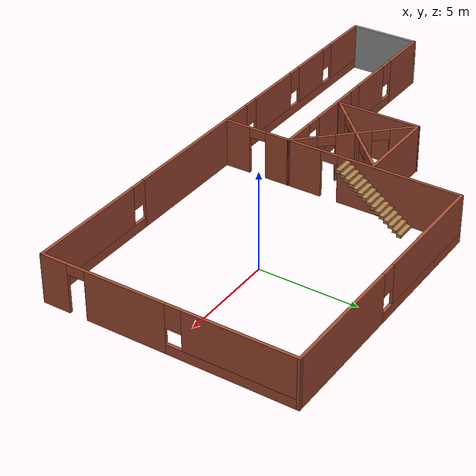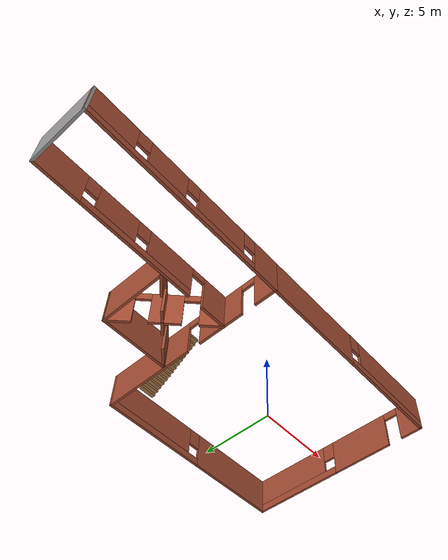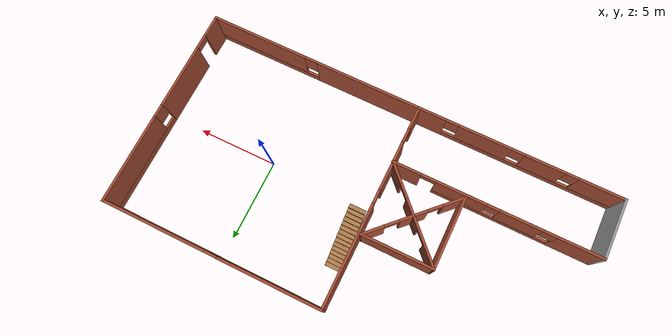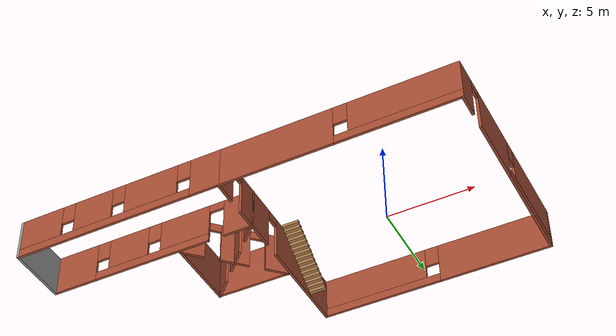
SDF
<?xml version='1.0'?>
<sdf version='1.7'>
  <model name='BrickBuilding'>
    <pose>-6.20039 0.049784 0 0 -0 0</pose>
    <link name='Stairs_0'>
      <visual name='Stairs_0_Visual_0'>
        <pose>0.13953 3.90131 0.083333 0 -0 0</pose>
        <geometry>
          <box>
            <size>1 0.233333 0.166667</size>
          </box>
        </geometry>
        <material>
          <script>
            <uri>file://media/materials/scripts/gazebo.material</uri>
            <name>Gazebo/Wood</name>
          </script>
          <ambient>1 1 1 1</ambient>
        </material>
        <meta>
          <layer>0</layer>
        </meta>
      </visual>
      <collision name='Stairs_0_Collision_0'>
        <geometry>
          <box>
            <size>1 0.233333 0.166667</size>
          </box>
        </geometry>
        <pose>0.13953 3.90131 0.083333 0 -0 0</pose>
      </collision>
      <visual name='Stairs_0_Visual_1'>
        <pose>0.13953 3.66797 0.25 0 -0 0</pose>
        <geometry>
          <box>
            <size>1 0.233333 0.166667</size>
          </box>
        </geometry>
        <material>
          <script>
            <uri>file://media/materials/scripts/gazebo.material</uri>
            <name>Gazebo/Wood</name>
          </script>
          <ambient>1 1 1 1</ambient>
        </material>
        <meta>
          <layer>0</layer>
        </meta>
      </visual>
      <collision name='Stairs_0_Collision_1'>
        <geometry>
          <box>
            <size>1 0.233333 0.166667</size>
          </box>
        </geometry>
        <pose>0.13953 3.66797 0.25 0 -0 0</pose>
      </collision>
      <visual name='Stairs_0_Visual_2'>
        <pose>0.13953 3.43464 0.416667 0 -0 0</pose>
        <geometry>
          <box>
            <size>1 0.233333 0.166667</size>
          </box>
        </geometry>
        <material>
          <script>
            <uri>file://media/materials/scripts/gazebo.material</uri>
            <name>Gazebo/Wood</name>
          </script>
          <ambient>1 1 1 1</ambient>
        </material>
        <meta>
          <layer>0</layer>
        </meta>
      </visual>
      <collision name='Stairs_0_Collision_2'>
        <geometry>
          <box>
            <size>1 0.233333 0.166667</size>
          </box>
        </geometry>
        <pose>0.13953 3.43464 0.416667 0 -0 0</pose>
      </collision>
      <visual name='Stairs_0_Visual_3'>
        <pose>0.13953 3.20131 0.583333 0 -0 0</pose>
        <geometry>
          <box>
            <size>1 0.233333 0.166667</size>
          </box>
        </geometry>
        <material>
          <script>
            <uri>file://media/materials/scripts/gazebo.material</uri>
            <name>Gazebo/Wood</name>
          </script>
          <ambient>1 1 1 1</ambient>
        </material>
        <meta>
          <layer>0</layer>
        </meta>
      </visual>
      <collision name='Stairs_0_Collision_3'>
        <geometry>
          <box>
            <size>1 0.233333 0.166667</size>
          </box>
        </geometry>
        <pose>0.13953 3.20131 0.583333 0 -0 0</pose>
      </collision>
      <visual name='Stairs_0_Visual_4'>
        <pose>0.13953 2.96797 0.75 0 -0 0</pose>
        <geometry>
          <box>
            <size>1 0.233333 0.166667</size>
          </box>
        </geometry>
        <material>
          <script>
            <uri>file://media/materials/scripts/gazebo.material</uri>
            <name>Gazebo/Wood</name>
          </script>
          <ambient>1 1 1 1</ambient>
        </material>
        <meta>
          <layer>0</layer>
        </meta>
      </visual>
      <collision name='Stairs_0_Collision_4'>
        <geometry>
          <box>
            <size>1 0.233333 0.166667</size>
          </box>
        </geometry>
        <pose>0.13953 2.96797 0.75 0 -0 0</pose>
      </collision>
      <visual name='Stairs_0_Visual_5'>
        <pose>0.13953 2.73464 0.916667 0 -0 0</pose>
        <geometry>
          <box>
            <size>1 0.233333 0.166667</size>
          </box>
        </geometry>
        <material>
          <script>
            <uri>file://media/materials/scripts/gazebo.material</uri>
            <name>Gazebo/Wood</name>
          </script>
          <ambient>1 1 1 1</ambient>
        </material>
        <meta>
          <layer>0</layer>
        </meta>
      </visual>
      <collision name='Stairs_0_Collision_5'>
        <geometry>
          <box>
            <size>1 0.233333 0.166667</size>
          </box>
        </geometry>
        <pose>0.13953 2.73464 0.916667 0 -0 0</pose>
      </collision>
      <visual name='Stairs_0_Visual_6'>
        <pose>0.13953 2.50131 1.08333 0 -0 0</pose>
        <geometry>
          <box>
            <size>1 0.233333 0.166667</size>
          </box>
        </geometry>
        <material>
          <script>
            <uri>file://media/materials/scripts/gazebo.material</uri>
            <name>Gazebo/Wood</name>
          </script>
          <ambient>1 1 1 1</ambient>
        </material>
        <meta>
          <layer>0</layer>
        </meta>
      </visual>
      <collision name='Stairs_0_Collision_6'>
        <geometry>
          <box>
            <size>1 0.233333 0.166667</size>
          </box>
        </geometry>
        <pose>0.13953 2.50131 1.08333 0 -0 0</pose>
      </collision>
      <visual name='Stairs_0_Visual_7'>
        <pose>0.13953 2.26797 1.25 0 -0 0</pose>
        <geometry>
          <box>
            <size>1 0.233333 0.166667</size>
          </box>
        </geometry>
        <material>
          <script>
            <uri>file://media/materials/scripts/gazebo.material</uri>
            <name>Gazebo/Wood</name>
          </script>
          <ambient>1 1 1 1</ambient>
        </material>
        <meta>
          <layer>0</layer>
        </meta>
      </visual>
      <collision name='Stairs_0_Collision_7'>
        <geometry>
          <box>
            <size>1 0.233333 0.166667</size>
          </box>
        </geometry>
        <pose>0.13953 2.26797 1.25 0 -0 0</pose>
      </collision>
      <visual name='Stairs_0_Visual_8'>
        <pose>0.13953 2.03464 1.41667 0 -0 0</pose>
        <geometry>
          <box>
            <size>1 0.233333 0.166667</size>
          </box>
        </geometry>
        <material>
          <script>
            <uri>file://media/materials/scripts/gazebo.material</uri>
            <name>Gazebo/Wood</name>
          </script>
          <ambient>1 1 1 1</ambient>
        </material>
        <meta>
          <layer>0</layer>
        </meta>
      </visual>
      <collision name='Stairs_0_Collision_8'>
        <geometry>
          <box>
            <size>1 0.233333 0.166667</size>
          </box>
        </geometry>
        <pose>0.13953 2.03464 1.41667 0 -0 0</pose>
      </collision>
      <visual name='Stairs_0_Visual_9'>
        <pose>0.13953 1.80131 1.58333 0 -0 0</pose>
        <geometry>
          <box>
            <size>1 0.233333 0.166667</size>
          </box>
        </geometry>
        <material>
          <script>
            <uri>file://media/materials/scripts/gazebo.material</uri>
            <name>Gazebo/Wood</name>
          </script>
          <ambient>1 1 1 1</ambient>
        </material>
        <meta>
          <layer>0</layer>
        </meta>
      </visual>
      <collision name='Stairs_0_Collision_9'>
        <geometry>
          <box>
            <size>1 0.233333 0.166667</size>
          </box>
        </geometry>
        <pose>0.13953 1.80131 1.58333 0 -0 0</pose>
      </collision>
      <visual name='Stairs_0_Visual_10'>
        <pose>0.13953 1.56797 1.75 0 -0 0</pose>
        <geometry>
          <box>
            <size>1 0.233333 0.166667</size>
          </box>
        </geometry>
        <material>
          <script>
            <uri>file://media/materials/scripts/gazebo.material</uri>
            <name>Gazebo/Wood</name>
          </script>
          <ambient>1 1 1 1</ambient>
        </material>
        <meta>
          <layer>0</layer>
        </meta>
      </visual>
      <collision name='Stairs_0_Collision_10'>
        <geometry>
          <box>
            <size>1 0.233333 0.166667</size>
          </box>
        </geometry>
        <pose>0.13953 1.56797 1.75 0 -0 0</pose>
      </collision>
      <visual name='Stairs_0_Visual_11'>
        <pose>0.13953 1.33464 1.91667 0 -0 0</pose>
        <geometry>
          <box>
            <size>1 0.233333 0.166667</size>
          </box>
        </geometry>
        <material>
          <script>
            <uri>file://media/materials/scripts/gazebo.material</uri>
            <name>Gazebo/Wood</name>
          </script>
          <ambient>1 1 1 1</ambient>
        </material>
        <meta>
          <layer>0</layer>
        </meta>
      </visual>
      <collision name='Stairs_0_Collision_11'>
        <geometry>
          <box>
            <size>1 0.233333 0.166667</size>
          </box>
        </geometry>
        <pose>0.13953 1.33464 1.91667 0 -0 0</pose>
      </collision>
      <visual name='Stairs_0_Visual_12'>
        <pose>0.13953 1.10131 2.08333 0 -0 0</pose>
        <geometry>
          <box>
            <size>1 0.233333 0.166667</size>
          </box>
        </geometry>
        <material>
          <script>
            <uri>file://media/materials/scripts/gazebo.material</uri>
            <name>Gazebo/Wood</name>
          </script>
          <ambient>1 1 1 1</ambient>
        </material>
        <meta>
          <layer>0</layer>
        </meta>
      </visual>
      <collision name='Stairs_0_Collision_12'>
        <geometry>
          <box>
            <size>1 0.233333 0.166667</size>
          </box>
        </geometry>
        <pose>0.13953 1.10131 2.08333 0 -0 0</pose>
      </collision>
      <visual name='Stairs_0_Visual_13'>
        <pose>0.13953 0.867974 2.25 0 -0 0</pose>
        <geometry>
          <box>
            <size>1 0.233333 0.166667</size>
          </box>
        </geometry>
        <material>
          <script>
            <uri>file://media/materials/scripts/gazebo.material</uri>
            <name>Gazebo/Wood</name>
          </script>
          <ambient>1 1 1 1</ambient>
        </material>
        <meta>
          <layer>0</layer>
        </meta>
      </visual>
      <collision name='Stairs_0_Collision_13'>
        <geometry>
          <box>
            <size>1 0.233333 0.166667</size>
          </box>
        </geometry>
        <pose>0.13953 0.867974 2.25 0 -0 0</pose>
      </collision>
      <visual name='Stairs_0_Visual_14'>
        <pose>0.13953 0.634641 2.41667 0 -0 0</pose>
        <geometry>
          <box>
            <size>1 0.233333 0.166667</size>
          </box>
        </geometry>
        <material>
          <script>
            <uri>file://media/materials/scripts/gazebo.material</uri>
            <name>Gazebo/Wood</name>
          </script>
          <ambient>1 1 1 1</ambient>
        </material>
        <meta>
          <layer>0</layer>
        </meta>
      </visual>
      <collision name='Stairs_0_Collision_14'>
        <geometry>
          <box>
            <size>1 0.233333 0.166667</size>
          </box>
        </geometry>
        <pose>0.13953 0.634641 2.41667 0 -0 0</pose>
      </collision>
    </link>
    <link name='Wall_10'>
      <collision name='Wall_10_Collision'>
        <geometry>
          <box>
            <size>3.75 0.15 2.5</size>
          </box>
        </geometry>
        <pose>0 0 1.25 0 -0 0</pose>
      </collision>
      <visual name='Wall_10_Visual'>
        <pose>0 0 1.25 0 -0 0</pose>
        <geometry>
          <box>
            <size>3.75 0.15 2.5</size>
          </box>
        </geometry>
        <material>
          <script>
            <uri>file://media/materials/scripts/gazebo.material</uri>
            <name>Gazebo/Grey</name>
          </script>
          <ambient>1 1 1 1</ambient>
        </material>
        <meta>
          <layer>0</layer>
        </meta>
      </visual>
      <pose>-13.1 -4.5 0 0 -0 1.5708</pose>
    </link>
    <link name='Wall_11'>
      <pose>-6.8 -2.7 0 0 -0 0</pose>
      <visual name='Wall_11_Visual_0'>
        <pose>-4.98003 0 1.25 0 -0 0</pose>
        <geometry>
          <box>
            <size>2.78994 0.15 2.5</size>
          </box>
        </geometry>
        <material>
          <script>
            <uri>file://media/materials/scripts/gazebo.material</uri>
            <name>Gazebo/Bricks</name>
          </script>
          <ambient>1 1 1 1</ambient>
        </material>
        <meta>
          <layer>0</layer>
        </meta>
      </visual>
      <collision name='Wall_11_Collision_0'>
        <geometry>
          <box>
            <size>2.78994 0.15 2.5</size>
          </box>
        </geometry>
        <pose>-4.98003 0 1.25 0 -0 0</pose>
      </collision>
      <visual name='Wall_11_Visual_1'>
        <pose>5.47431 0 1.25 0 -0 0</pose>
        <geometry>
          <box>
            <size>1.80137 0.15 2.5</size>
          </box>
        </geometry>
        <material>
          <script>
            <uri>file://media/materials/scripts/gazebo.material</uri>
            <name>Gazebo/Bricks</name>
          </script>
          <ambient>1 1 1 1</ambient>
        </material>
        <meta>
          <layer>0</layer>
        </meta>
      </visual>
      <collision name='Wall_11_Collision_1'>
        <geometry>
          <box>
            <size>1.80137 0.15 2.5</size>
          </box>
        </geometry>
        <pose>5.47431 0 1.25 0 -0 0</pose>
      </collision>
      <visual name='Wall_11_Visual_2'>
        <pose>0.044284 0 0.25 0 -0 0</pose>
        <geometry>
          <box>
            <size>7.25869 0.15 0.5</size>
          </box>
        </geometry>
        <material>
          <script>
            <uri>file://media/materials/scripts/gazebo.material</uri>
            <name>Gazebo/Bricks</name>
          </script>
          <ambient>1 1 1 1</ambient>
        </material>
        <meta>
          <layer>0</layer>
        </meta>
      </visual>
      <collision name='Wall_11_Collision_2'>
        <geometry>
          <box>
            <size>7.25869 0.15 0.5</size>
          </box>
        </geometry>
        <pose>0.044284 0 0.25 0 -0 0</pose>
      </collision>
      <visual name='Wall_11_Visual_3'>
        <pose>-1.50616 0 1.5 0 -0 0</pose>
        <geometry>
          <box>
            <size>2.55781 0.15 2</size>
          </box>
        </geometry>
        <material>
          <script>
            <uri>file://media/materials/scripts/gazebo.material</uri>
            <name>Gazebo/Bricks</name>
          </script>
          <ambient>1 1 1 1</ambient>
        </material>
        <meta>
          <layer>0</layer>
        </meta>
      </visual>
      <collision name='Wall_11_Collision_3'>
        <geometry>
          <box>
            <size>2.55781 0.15 2</size>
          </box>
        </geometry>
        <pose>-1.50616 0 1.5 0 -0 0</pose>
      </collision>
      <visual name='Wall_11_Visual_4'>
        <pose>2.12319 0 1.5 0 -0 0</pose>
        <geometry>
          <box>
            <size>3.10088 0.15 2</size>
          </box>
        </geometry>
        <material>
          <script>
            <uri>file://media/materials/scripts/gazebo.material</uri>
            <name>Gazebo/Bricks</name>
          </script>
          <ambient>1 1 1 1</ambient>
        </material>
        <meta>
          <layer>0</layer>
        </meta>
      </visual>
      <collision name='Wall_11_Collision_4'>
        <geometry>
          <box>
            <size>3.10088 0.15 2</size>
          </box>
        </geometry>
        <pose>2.12319 0 1.5 0 -0 0</pose>
      </collision>
      <visual name='Wall_11_Visual_5'>
        <pose>-3.18506 0 1.9 0 -0 0</pose>
        <geometry>
          <box>
            <size>0.8 0.15 1.2</size>
          </box>
        </geometry>
        <material>
          <script>
            <uri>file://media/materials/scripts/gazebo.material</uri>
            <name>Gazebo/Bricks</name>
          </script>
          <ambient>1 1 1 1</ambient>
        </material>
        <meta>
          <layer>0</layer>
        </meta>
      </visual>
      <collision name='Wall_11_Collision_5'>
        <geometry>
          <box>
            <size>0.8 0.15 1.2</size>
          </box>
        </geometry>
        <pose>-3.18506 0 1.9 0 -0 0</pose>
      </collision>
      <visual name='Wall_11_Visual_6'>
        <pose>0.17275 0 1.9 0 -0 0</pose>
        <geometry>
          <box>
            <size>0.8 0.15 1.2</size>
          </box>
        </geometry>
        <material>
          <script>
            <uri>file://media/materials/scripts/gazebo.material</uri>
            <name>Gazebo/Bricks</name>
          </script>
          <ambient>1 1 1 1</ambient>
        </material>
        <meta>
          <layer>0</layer>
        </meta>
      </visual>
      <collision name='Wall_11_Collision_6'>
        <geometry>
          <box>
            <size>0.8 0.15 1.2</size>
          </box>
        </geometry>
        <pose>0.17275 0 1.9 0 -0 0</pose>
      </collision>
      <visual name='Wall_11_Visual_7'>
        <pose>4.12363 0 2.25 0 -0 0</pose>
        <geometry>
          <box>
            <size>0.9 0.15 0.5</size>
          </box>
        </geometry>
        <material>
          <script>
            <uri>file://media/materials/scripts/gazebo.material</uri>
            <name>Gazebo/Bricks</name>
          </script>
          <ambient>1 1 1 1</ambient>
        </material>
        <meta>
          <layer>0</layer>
        </meta>
      </visual>
      <collision name='Wall_11_Collision_7'>
        <geometry>
          <box>
            <size>0.9 0.15 0.5</size>
          </box>
        </geometry>
        <pose>4.12363 0 2.25 0 -0 0</pose>
      </collision>
    </link>
    <link name='Wall_12'>
      <pose>-2.74506 -0.454936 0 0 -0 2.35619</pose>
      <visual name='Wall_12_Visual_0'>
        <pose>-2.54006 0 1.25 0 -0 0</pose>
        <geometry>
          <box>
            <size>1.41987 0.15 2.5</size>
          </box>
        </geometry>
        <material>
          <script>
            <uri>file://media/materials/scripts/gazebo.material</uri>
            <name>Gazebo/Bricks</name>
          </script>
          <ambient>1 1 1 1</ambient>
        </material>
        <meta>
          <layer>0</layer>
        </meta>
      </visual>
      <collision name='Wall_12_Collision_0'>
        <geometry>
          <box>
            <size>1.41987 0.15 2.5</size>
          </box>
        </geometry>
        <pose>-2.54006 0 1.25 0 -0 0</pose>
      </collision>
      <visual name='Wall_12_Visual_1'>
        <pose>-0.036104 0 1.25 0 -0 0</pose>
        <geometry>
          <box>
            <size>1.78804 0.15 2.5</size>
          </box>
        </geometry>
        <material>
          <script>
            <uri>file://media/materials/scripts/gazebo.material</uri>
            <name>Gazebo/Bricks</name>
          </script>
          <ambient>1 1 1 1</ambient>
        </material>
        <meta>
          <layer>0</layer>
        </meta>
      </visual>
      <collision name='Wall_12_Collision_1'>
        <geometry>
          <box>
            <size>1.78804 0.15 2.5</size>
          </box>
        </geometry>
        <pose>-0.036104 0 1.25 0 -0 0</pose>
      </collision>
      <visual name='Wall_12_Visual_2'>
        <pose>2.50396 0 1.25 0 -0 0</pose>
        <geometry>
          <box>
            <size>1.49208 0.15 2.5</size>
          </box>
        </geometry>
        <material>
          <script>
            <uri>file://media/materials/scripts/gazebo.material</uri>
            <name>Gazebo/Bricks</name>
          </script>
          <ambient>1 1 1 1</ambient>
        </material>
        <meta>
          <layer>0</layer>
        </meta>
      </visual>
      <collision name='Wall_12_Collision_2'>
        <geometry>
          <box>
            <size>1.49208 0.15 2.5</size>
          </box>
        </geometry>
        <pose>2.50396 0 1.25 0 -0 0</pose>
      </collision>
      <visual name='Wall_12_Visual_3'>
        <pose>-1.38013 0 2.25 0 -0 0</pose>
        <geometry>
          <box>
            <size>0.9 0.15 0.5</size>
          </box>
        </geometry>
        <material>
          <script>
            <uri>file://media/materials/scripts/gazebo.material</uri>
            <name>Gazebo/Bricks</name>
          </script>
          <ambient>1 1 1 1</ambient>
        </material>
        <meta>
          <layer>0</layer>
        </meta>
      </visual>
      <collision name='Wall_12_Collision_3'>
        <geometry>
          <box>
            <size>0.9 0.15 0.5</size>
          </box>
        </geometry>
        <pose>-1.38013 0 2.25 0 -0 0</pose>
      </collision>
      <visual name='Wall_12_Visual_4'>
        <pose>1.30792 0 2.25 0 -0 0</pose>
        <geometry>
          <box>
            <size>0.9 0.15 0.5</size>
          </box>
        </geometry>
        <material>
          <script>
            <uri>file://media/materials/scripts/gazebo.material</uri>
            <name>Gazebo/Bricks</name>
          </script>
          <ambient>1 1 1 1</ambient>
        </material>
        <meta>
          <layer>0</layer>
        </meta>
      </visual>
      <collision name='Wall_12_Collision_4'>
        <geometry>
          <box>
            <size>0.9 0.15 0.5</size>
          </box>
        </geometry>
        <pose>1.30792 0 2.25 0 -0 0</pose>
      </collision>
    </link>
    <link name='Wall_13'>
      <collision name='Wall_13_Collision'>
        <geometry>
          <box>
            <size>4.5 0.15 2.5</size>
          </box>
        </geometry>
        <pose>0 0 1.25 0 -0 0</pose>
      </collision>
      <visual name='Wall_13_Visual'>
        <pose>0 0 1.25 0 -0 0</pose>
        <geometry>
          <box>
            <size>4.5 0.15 2.5</size>
          </box>
        </geometry>
        <material>
          <script>
            <uri>file://media/materials/scripts/gazebo.material</uri>
            <name>Gazebo/Bricks</name>
          </script>
          <ambient>1 1 1 1</ambient>
        </material>
        <meta>
          <layer>0</layer>
        </meta>
      </visual>
      <pose>-4.99013 -0.384872 0 0 -0 -1.5708</pose>
    </link>
    <link name='Wall_19'>
      <collision name='Wall_19_Collision'>
        <geometry>
          <box>
            <size>4.5 0.15 2.5</size>
          </box>
        </geometry>
        <pose>0 0 1.25 0 -0 0</pose>
      </collision>
      <visual name='Wall_19_Visual'>
        <pose>0 0 1.25 0 -0 0</pose>
        <geometry>
          <box>
            <size>4.5 0.15 2.5</size>
          </box>
        </geometry>
        <material>
          <script>
            <uri>file://media/materials/scripts/gazebo.material</uri>
            <name>Gazebo/Bricks</name>
          </script>
          <ambient>1 1 1 1</ambient>
        </material>
        <meta>
          <layer>0</layer>
        </meta>
      </visual>
      <pose>-2.81513 1.79013 0 0 -0 0</pose>
    </link>
    <link name='Wall_20'>
      <pose>-2.81513 -0.384872 0 0 -0 -2.35619</pose>
      <visual name='Wall_20_Visual_0'>
        <pose>-2.43899 0 1.25 0 -0 0</pose>
        <geometry>
          <box>
            <size>1.42385 0.15 2.5</size>
          </box>
        </geometry>
        <material>
          <script>
            <uri>file://media/materials/scripts/gazebo.material</uri>
            <name>Gazebo/Bricks</name>
          </script>
          <ambient>1 1 1 1</ambient>
        </material>
        <meta>
          <layer>0</layer>
        </meta>
      </visual>
      <collision name='Wall_20_Collision_0'>
        <geometry>
          <box>
            <size>1.42385 0.15 2.5</size>
          </box>
        </geometry>
        <pose>-2.43899 0 1.25 0 -0 0</pose>
      </collision>
      <visual name='Wall_20_Visual_1'>
        <pose>0.010068 0 1.25 0 -0 0</pose>
        <geometry>
          <box>
            <size>1.67426 0.15 2.5</size>
          </box>
        </geometry>
        <material>
          <script>
            <uri>file://media/materials/scripts/gazebo.material</uri>
            <name>Gazebo/Bricks</name>
          </script>
          <ambient>1 1 1 1</ambient>
        </material>
        <meta>
          <layer>0</layer>
        </meta>
      </visual>
      <collision name='Wall_20_Collision_1'>
        <geometry>
          <box>
            <size>1.67426 0.15 2.5</size>
          </box>
        </geometry>
        <pose>0.010068 0 1.25 0 -0 0</pose>
      </collision>
      <visual name='Wall_20_Visual_2'>
        <pose>2.44906 0 1.25 0 -0 0</pose>
        <geometry>
          <box>
            <size>1.40372 0.15 2.5</size>
          </box>
        </geometry>
        <material>
          <script>
            <uri>file://media/materials/scripts/gazebo.material</uri>
            <name>Gazebo/Bricks</name>
          </script>
          <ambient>1 1 1 1</ambient>
        </material>
        <meta>
          <layer>0</layer>
        </meta>
      </visual>
      <collision name='Wall_20_Collision_2'>
        <geometry>
          <box>
            <size>1.40372 0.15 2.5</size>
          </box>
        </geometry>
        <pose>2.44906 0 1.25 0 -0 0</pose>
      </collision>
      <visual name='Wall_20_Visual_3'>
        <pose>-1.27706 0 2.25 0 -0 0</pose>
        <geometry>
          <box>
            <size>0.9 0.15 0.5</size>
          </box>
        </geometry>
        <material>
          <script>
            <uri>file://media/materials/scripts/gazebo.material</uri>
            <name>Gazebo/Bricks</name>
          </script>
          <ambient>1 1 1 1</ambient>
        </material>
        <meta>
          <layer>0</layer>
        </meta>
      </visual>
      <collision name='Wall_20_Collision_3'>
        <geometry>
          <box>
            <size>0.9 0.15 0.5</size>
          </box>
        </geometry>
        <pose>-1.27706 0 2.25 0 -0 0</pose>
      </collision>
      <visual name='Wall_20_Visual_4'>
        <pose>1.2972 0 2.25 0 -0 0</pose>
        <geometry>
          <box>
            <size>0.9 0.15 0.5</size>
          </box>
        </geometry>
        <material>
          <script>
            <uri>file://media/materials/scripts/gazebo.material</uri>
            <name>Gazebo/Bricks</name>
          </script>
          <ambient>1 1 1 1</ambient>
        </material>
        <meta>
          <layer>0</layer>
        </meta>
      </visual>
      <collision name='Wall_20_Collision_4'>
        <geometry>
          <box>
            <size>0.9 0.15 0.5</size>
          </box>
        </geometry>
        <pose>1.2972 0 2.25 0 -0 0</pose>
      </collision>
    </link>
    <link name='Wall_4'>
      <pose>6.3 -6.3 0 0 -0 0</pose>
      <visual name='Wall_4_Visual_0'>
        <pose>-3.50687 0 1.25 0 -0 0</pose>
        <geometry>
          <box>
            <size>6.73627 0.15 2.5</size>
          </box>
        </geometry>
        <material>
          <script>
            <uri>file://media/materials/scripts/gazebo.material</uri>
            <name>Gazebo/Bricks</name>
          </script>
          <ambient>1 1 1 1</ambient>
        </material>
        <meta>
          <layer>0</layer>
        </meta>
      </visual>
      <collision name='Wall_4_Collision_0'>
        <geometry>
          <box>
            <size>6.73627 0.15 2.5</size>
          </box>
        </geometry>
        <pose>-3.50687 0 1.25 0 -0 0</pose>
      </collision>
      <visual name='Wall_4_Visual_1'>
        <pose>3.36813 0 0.25 0 -0 0</pose>
        <geometry>
          <box>
            <size>7.01373 0.15 0.5</size>
          </box>
        </geometry>
        <material>
          <script>
            <uri>file://media/materials/scripts/gazebo.material</uri>
            <name>Gazebo/Bricks</name>
          </script>
          <ambient>1 1 1 1</ambient>
        </material>
        <meta>
          <layer>0</layer>
        </meta>
      </visual>
      <collision name='Wall_4_Collision_1'>
        <geometry>
          <box>
            <size>7.01373 0.15 0.5</size>
          </box>
        </geometry>
        <pose>3.36813 0 0.25 0 -0 0</pose>
      </collision>
      <visual name='Wall_4_Visual_2'>
        <pose>3.76813 0 1.5 0 -0 0</pose>
        <geometry>
          <box>
            <size>6.21373 0.15 2</size>
          </box>
        </geometry>
        <material>
          <script>
            <uri>file://media/materials/scripts/gazebo.material</uri>
            <name>Gazebo/Bricks</name>
          </script>
          <ambient>1 1 1 1</ambient>
        </material>
        <meta>
          <layer>0</layer>
        </meta>
      </visual>
      <collision name='Wall_4_Collision_2'>
        <geometry>
          <box>
            <size>6.21373 0.15 2</size>
          </box>
        </geometry>
        <pose>3.76813 0 1.5 0 -0 0</pose>
      </collision>
      <visual name='Wall_4_Visual_3'>
        <pose>0.261268 0 1.9 0 -0 0</pose>
        <geometry>
          <box>
            <size>0.8 0.15 1.2</size>
          </box>
        </geometry>
        <material>
          <script>
            <uri>file://media/materials/scripts/gazebo.material</uri>
            <name>Gazebo/Bricks</name>
          </script>
          <ambient>1 1 1 1</ambient>
        </material>
        <meta>
          <layer>0</layer>
        </meta>
      </visual>
      <collision name='Wall_4_Collision_3'>
        <geometry>
          <box>
            <size>0.8 0.15 1.2</size>
          </box>
        </geometry>
        <pose>0.261268 0 1.9 0 -0 0</pose>
      </collision>
    </link>
    <link name='Wall_5'>
      <pose>13.1 0 0 0 -0 1.5708</pose>
      <visual name='Wall_5_Visual_0'>
        <pose>-5.65759 0 1.25 0 -0 0</pose>
        <geometry>
          <box>
            <size>1.43481 0.15 2.5</size>
          </box>
        </geometry>
        <material>
          <script>
            <uri>file://media/materials/scripts/gazebo.material</uri>
            <name>Gazebo/Bricks</name>
          </script>
          <ambient>1 1 1 1</ambient>
        </material>
        <meta>
          <layer>0</layer>
        </meta>
      </visual>
      <collision name='Wall_5_Collision_0'>
        <geometry>
          <box>
            <size>1.43481 0.15 2.5</size>
          </box>
        </geometry>
        <pose>-5.65759 0 1.25 0 -0 0</pose>
      </collision>
      <visual name='Wall_5_Visual_1'>
        <pose>-2.00257 0 1.25 0 -0 0</pose>
        <geometry>
          <box>
            <size>4.07523 0.15 2.5</size>
          </box>
        </geometry>
        <material>
          <script>
            <uri>file://media/materials/scripts/gazebo.material</uri>
            <name>Gazebo/Bricks</name>
          </script>
          <ambient>1 1 1 1</ambient>
        </material>
        <meta>
          <layer>0</layer>
        </meta>
      </visual>
      <collision name='Wall_5_Collision_1'>
        <geometry>
          <box>
            <size>4.07523 0.15 2.5</size>
          </box>
        </geometry>
        <pose>-2.00257 0 1.25 0 -0 0</pose>
      </collision>
      <visual name='Wall_5_Visual_2'>
        <pose>3.20502 0 0.25 0 -0 0</pose>
        <geometry>
          <box>
            <size>6.33996 0.15 0.5</size>
          </box>
        </geometry>
        <material>
          <script>
            <uri>file://media/materials/scripts/gazebo.material</uri>
            <name>Gazebo/Bricks</name>
          </script>
          <ambient>1 1 1 1</ambient>
        </material>
        <meta>
          <layer>0</layer>
        </meta>
      </visual>
      <collision name='Wall_5_Collision_2'>
        <geometry>
          <box>
            <size>6.33996 0.15 0.5</size>
          </box>
        </geometry>
        <pose>3.20502 0 0.25 0 -0 0</pose>
      </collision>
      <visual name='Wall_5_Visual_3'>
        <pose>3.60502 0 1.5 0 -0 0</pose>
        <geometry>
          <box>
            <size>5.53996 0.15 2</size>
          </box>
        </geometry>
        <material>
          <script>
            <uri>file://media/materials/scripts/gazebo.material</uri>
            <name>Gazebo/Bricks</name>
          </script>
          <ambient>1 1 1 1</ambient>
        </material>
        <meta>
          <layer>0</layer>
        </meta>
      </visual>
      <collision name='Wall_5_Collision_3'>
        <geometry>
          <box>
            <size>5.53996 0.15 2</size>
          </box>
        </geometry>
        <pose>3.60502 0 1.5 0 -0 0</pose>
      </collision>
      <visual name='Wall_5_Visual_4'>
        <pose>0.435044 0 1.9 0 -0 0</pose>
        <geometry>
          <box>
            <size>0.8 0.15 1.2</size>
          </box>
        </geometry>
        <material>
          <script>
            <uri>file://media/materials/scripts/gazebo.material</uri>
            <name>Gazebo/Bricks</name>
          </script>
          <ambient>1 1 1 1</ambient>
        </material>
        <meta>
          <layer>0</layer>
        </meta>
      </visual>
      <collision name='Wall_5_Collision_4'>
        <geometry>
          <box>
            <size>0.8 0.15 1.2</size>
          </box>
        </geometry>
        <pose>0.435044 0 1.9 0 -0 0</pose>
      </collision>
      <visual name='Wall_5_Visual_5'>
        <pose>-4.49019 0 2.25 0 -0 0</pose>
        <geometry>
          <box>
            <size>0.9 0.15 0.5</size>
          </box>
        </geometry>
        <material>
          <script>
            <uri>file://media/materials/scripts/gazebo.material</uri>
            <name>Gazebo/Bricks</name>
          </script>
          <ambient>1 1 1 1</ambient>
        </material>
        <meta>
          <layer>0</layer>
        </meta>
      </visual>
      <collision name='Wall_5_Collision_5'>
        <geometry>
          <box>
            <size>0.9 0.15 0.5</size>
          </box>
        </geometry>
        <pose>-4.49019 0 2.25 0 -0 0</pose>
      </collision>
    </link>
    <link name='Wall_6'>
      <pose>6.3 6.3 0 0 -0 3.14159</pose>
      <visual name='Wall_6_Visual_0'>
        <pose>-3.60631 0 1.25 0 -0 0</pose>
        <geometry>
          <box>
            <size>6.53738 0.15 2.5</size>
          </box>
        </geometry>
        <material>
          <script>
            <uri>file://media/materials/scripts/gazebo.material</uri>
            <name>Gazebo/Bricks</name>
          </script>
          <ambient>1 1 1 1</ambient>
        </material>
        <meta>
          <layer>0</layer>
        </meta>
      </visual>
      <collision name='Wall_6_Collision_0'>
        <geometry>
          <box>
            <size>6.53738 0.15 2.5</size>
          </box>
        </geometry>
        <pose>-3.60631 0 1.25 0 -0 0</pose>
      </collision>
      <visual name='Wall_6_Visual_1'>
        <pose>3.26869 0 0.25 0 -0 0</pose>
        <geometry>
          <box>
            <size>7.21262 0.15 0.5</size>
          </box>
        </geometry>
        <material>
          <script>
            <uri>file://media/materials/scripts/gazebo.material</uri>
            <name>Gazebo/Bricks</name>
          </script>
          <ambient>1 1 1 1</ambient>
        </material>
        <meta>
          <layer>0</layer>
        </meta>
      </visual>
      <collision name='Wall_6_Collision_1'>
        <geometry>
          <box>
            <size>7.21262 0.15 0.5</size>
          </box>
        </geometry>
        <pose>3.26869 0 0.25 0 -0 0</pose>
      </collision>
      <visual name='Wall_6_Visual_2'>
        <pose>3.66869 0 1.5 0 -0 0</pose>
        <geometry>
          <box>
            <size>6.41262 0.15 2</size>
          </box>
        </geometry>
        <material>
          <script>
            <uri>file://media/materials/scripts/gazebo.material</uri>
            <name>Gazebo/Bricks</name>
          </script>
          <ambient>1 1 1 1</ambient>
        </material>
        <meta>
          <layer>0</layer>
        </meta>
      </visual>
      <collision name='Wall_6_Collision_2'>
        <geometry>
          <box>
            <size>6.41262 0.15 2</size>
          </box>
        </geometry>
        <pose>3.66869 0 1.5 0 -0 0</pose>
      </collision>
      <visual name='Wall_6_Visual_3'>
        <pose>0.062377 0 1.9 0 -0 0</pose>
        <geometry>
          <box>
            <size>0.8 0.15 1.2</size>
          </box>
        </geometry>
        <material>
          <script>
            <uri>file://media/materials/scripts/gazebo.material</uri>
            <name>Gazebo/Bricks</name>
          </script>
          <ambient>1 1 1 1</ambient>
        </material>
        <meta>
          <layer>0</layer>
        </meta>
      </visual>
      <collision name='Wall_6_Collision_3'>
        <geometry>
          <box>
            <size>0.8 0.15 1.2</size>
          </box>
        </geometry>
        <pose>0.062377 0 1.9 0 -0 0</pose>
      </collision>
    </link>
    <link name='Wall_7'>
      <pose>-0.5 0 0 0 -0 -1.5708</pose>
      <visual name='Wall_7_Visual_0'>
        <pose>-3.17876 0 1.25 0 -0 0</pose>
        <geometry>
          <box>
            <size>6.39247 0.15 2.5</size>
          </box>
        </geometry>
        <material>
          <script>
            <uri>file://media/materials/scripts/gazebo.material</uri>
            <name>Gazebo/Bricks</name>
          </script>
          <ambient>1 1 1 1</ambient>
        </material>
        <meta>
          <layer>0</layer>
        </meta>
      </visual>
      <collision name='Wall_7_Collision_0'>
        <geometry>
          <box>
            <size>6.39247 0.15 2.5</size>
          </box>
        </geometry>
        <pose>-3.17876 0 1.25 0 -0 0</pose>
      </collision>
      <visual name='Wall_7_Visual_1'>
        <pose>2.45872 0 1.25 0 -0 0</pose>
        <geometry>
          <box>
            <size>3.08249 0.15 2.5</size>
          </box>
        </geometry>
        <material>
          <script>
            <uri>file://media/materials/scripts/gazebo.material</uri>
            <name>Gazebo/Bricks</name>
          </script>
          <ambient>1 1 1 1</ambient>
        </material>
        <meta>
          <layer>0</layer>
        </meta>
      </visual>
      <collision name='Wall_7_Collision_1'>
        <geometry>
          <box>
            <size>3.08249 0.15 2.5</size>
          </box>
        </geometry>
        <pose>2.45872 0 1.25 0 -0 0</pose>
      </collision>
      <visual name='Wall_7_Visual_2'>
        <pose>5.63748 0 1.25 0 -0 0</pose>
        <geometry>
          <box>
            <size>1.47504 0.15 2.5</size>
          </box>
        </geometry>
        <material>
          <script>
            <uri>file://media/materials/scripts/gazebo.material</uri>
            <name>Gazebo/Bricks</name>
          </script>
          <ambient>1 1 1 1</ambient>
        </material>
        <meta>
          <layer>0</layer>
        </meta>
      </visual>
      <collision name='Wall_7_Collision_2'>
        <geometry>
          <box>
            <size>1.47504 0.15 2.5</size>
          </box>
        </geometry>
        <pose>5.63748 0 1.25 0 -0 0</pose>
      </collision>
      <visual name='Wall_7_Visual_3'>
        <pose>0.467471 0 2.25 0 -0 0</pose>
        <geometry>
          <box>
            <size>0.9 0.15 0.5</size>
          </box>
        </geometry>
        <material>
          <script>
            <uri>file://media/materials/scripts/gazebo.material</uri>
            <name>Gazebo/Bricks</name>
          </script>
          <ambient>1 1 1 1</ambient>
        </material>
        <meta>
          <layer>0</layer>
        </meta>
      </visual>
      <collision name='Wall_7_Collision_3'>
        <geometry>
          <box>
            <size>0.9 0.15 0.5</size>
          </box>
        </geometry>
        <pose>0.467471 0 2.25 0 -0 0</pose>
      </collision>
      <visual name='Wall_7_Visual_4'>
        <pose>4.44996 0 2.25 0 -0 0</pose>
        <geometry>
          <box>
            <size>0.9 0.15 0.5</size>
          </box>
        </geometry>
        <material>
          <script>
            <uri>file://media/materials/scripts/gazebo.material</uri>
            <name>Gazebo/Bricks</name>
          </script>
          <ambient>1 1 1 1</ambient>
        </material>
        <meta>
          <layer>0</layer>
        </meta>
      </visual>
      <collision name='Wall_7_Collision_4'>
        <geometry>
          <box>
            <size>0.9 0.15 0.5</size>
          </box>
        </geometry>
        <pose>4.44996 0 2.25 0 -0 0</pose>
      </collision>
    </link>
    <link name='Wall_8'>
      <pose>-6.8 -6.3 0 0 -0 3.14159</pose>
      <visual name='Wall_8_Visual_0'>
        <pose>-5.47643 0 1.25 0 -0 0</pose>
        <geometry>
          <box>
            <size>1.79715 0.15 2.5</size>
          </box>
        </geometry>
        <material>
          <script>
            <uri>file://media/materials/scripts/gazebo.material</uri>
            <name>Gazebo/Bricks</name>
          </script>
          <ambient>1 1 1 1</ambient>
        </material>
        <meta>
          <layer>0</layer>
        </meta>
      </visual>
      <collision name='Wall_8_Collision_0'>
        <geometry>
          <box>
            <size>1.79715 0.15 2.5</size>
          </box>
        </geometry>
        <pose>-5.47643 0 1.25 0 -0 0</pose>
      </collision>
      <visual name='Wall_8_Visual_1'>
        <pose>0.898574 0 0.25 0 -0 0</pose>
        <geometry>
          <box>
            <size>10.9529 0.15 0.5</size>
          </box>
        </geometry>
        <material>
          <script>
            <uri>file://media/materials/scripts/gazebo.material</uri>
            <name>Gazebo/Bricks</name>
          </script>
          <ambient>1 1 1 1</ambient>
        </material>
        <meta>
          <layer>0</layer>
        </meta>
      </visual>
      <collision name='Wall_8_Collision_1'>
        <geometry>
          <box>
            <size>10.9529 0.15 0.5</size>
          </box>
        </geometry>
        <pose>0.898574 0 0.25 0 -0 0</pose>
      </collision>
      <visual name='Wall_8_Visual_2'>
        <pose>-2.13484 0 1.5 0 -0 0</pose>
        <geometry>
          <box>
            <size>3.28601 0.15 2</size>
          </box>
        </geometry>
        <material>
          <script>
            <uri>file://media/materials/scripts/gazebo.material</uri>
            <name>Gazebo/Bricks</name>
          </script>
          <ambient>1 1 1 1</ambient>
        </material>
        <meta>
          <layer>0</layer>
        </meta>
      </visual>
      <collision name='Wall_8_Collision_2'>
        <geometry>
          <box>
            <size>3.28601 0.15 2</size>
          </box>
        </geometry>
        <pose>-2.13484 0 1.5 0 -0 0</pose>
      </collision>
      <visual name='Wall_8_Visual_3'>
        <pose>1.52638 0 1.5 0 -0 0</pose>
        <geometry>
          <box>
            <size>2.43644 0.15 2</size>
          </box>
        </geometry>
        <material>
          <script>
            <uri>file://media/materials/scripts/gazebo.material</uri>
            <name>Gazebo/Bricks</name>
          </script>
          <ambient>1 1 1 1</ambient>
        </material>
        <meta>
          <layer>0</layer>
        </meta>
      </visual>
      <collision name='Wall_8_Collision_3'>
        <geometry>
          <box>
            <size>2.43644 0.15 2</size>
          </box>
        </geometry>
        <pose>1.52638 0 1.5 0 -0 0</pose>
      </collision>
      <visual name='Wall_8_Visual_4'>
        <pose>4.9598 0 1.5 0 -0 0</pose>
        <geometry>
          <box>
            <size>2.83039 0.15 2</size>
          </box>
        </geometry>
        <material>
          <script>
            <uri>file://media/materials/scripts/gazebo.material</uri>
            <name>Gazebo/Bricks</name>
          </script>
          <ambient>1 1 1 1</ambient>
        </material>
        <meta>
          <layer>0</layer>
        </meta>
      </visual>
      <collision name='Wall_8_Collision_4'>
        <geometry>
          <box>
            <size>2.83039 0.15 2</size>
          </box>
        </geometry>
        <pose>4.9598 0 1.5 0 -0 0</pose>
      </collision>
      <visual name='Wall_8_Visual_5'>
        <pose>-4.17785 0 1.9 0 -0 0</pose>
        <geometry>
          <box>
            <size>0.8 0.15 1.2</size>
          </box>
        </geometry>
        <material>
          <script>
            <uri>file://media/materials/scripts/gazebo.material</uri>
            <name>Gazebo/Bricks</name>
          </script>
          <ambient>1 1 1 1</ambient>
        </material>
        <meta>
          <layer>0</layer>
        </meta>
      </visual>
      <collision name='Wall_8_Collision_5'>
        <geometry>
          <box>
            <size>0.8 0.15 1.2</size>
          </box>
        </geometry>
        <pose>-4.17785 0 1.9 0 -0 0</pose>
      </collision>
      <visual name='Wall_8_Visual_6'>
        <pose>-0.091839 0 1.9 0 -0 0</pose>
        <geometry>
          <box>
            <size>0.8 0.15 1.2</size>
          </box>
        </geometry>
        <material>
          <script>
            <uri>file://media/materials/scripts/gazebo.material</uri>
            <name>Gazebo/Bricks</name>
          </script>
          <ambient>1 1 1 1</ambient>
        </material>
        <meta>
          <layer>0</layer>
        </meta>
      </visual>
      <collision name='Wall_8_Collision_6'>
        <geometry>
          <box>
            <size>0.8 0.15 1.2</size>
          </box>
        </geometry>
        <pose>-0.091839 0 1.9 0 -0 0</pose>
      </collision>
      <visual name='Wall_8_Visual_7'>
        <pose>3.14461 0 1.9 0 -0 0</pose>
        <geometry>
          <box>
            <size>0.8 0.15 1.2</size>
          </box>
        </geometry>
        <material>
          <script>
            <uri>file://media/materials/scripts/gazebo.material</uri>
            <name>Gazebo/Bricks</name>
          </script>
          <ambient>1 1 1 1</ambient>
        </material>
        <meta>
          <layer>0</layer>
        </meta>
      </visual>
      <collision name='Wall_8_Collision_7'>
        <geometry>
          <box>
            <size>0.8 0.15 1.2</size>
          </box>
        </geometry>
        <pose>3.14461 0 1.9 0 -0 0</pose>
      </collision>
    </link>
    <static>1</static>
  </model>
</sdf>
